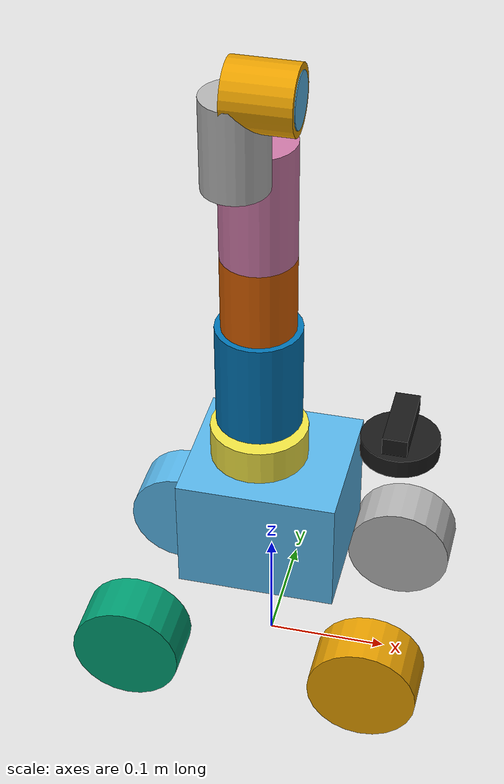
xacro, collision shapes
<?xml version="1.0"?>
<robot name="limo_mycobot" xmlns:xacro="http://ros.org/wiki/xacro">

    <xacro:arg name="mode" default="diff" />

    <xacro:if value="${'$(arg mode)' == 'ackermann'}">
        <xacro:include filename="$(find limo_car)/gazebo/ackermann_with_sensor.xacro" />
    </xacro:if>
    <xacro:unless value="${'$(arg mode)' == 'ackermann'}">
        <xacro:include filename="$(find limo_description)/urdf/limo_four_diff.xacro" />
    </xacro:unless>

    <xacro:include filename="$(find mycobot_description)/urdf/mycobot/mycobot.urdf.xacro" />

    <joint name="limo_mycobot" type="fixed">
        <parent link="base_link" />
        <child link="joint1" />
        <origin xyz="-0.01 0.0 0.0" rpy="0 0 0" />
    </joint>

</robot>

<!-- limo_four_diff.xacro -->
<robot name="limo_four_diff" xmlns:xacro="http://ros.org/wiki/xacro">

    <xacro:include filename="$(find limo_description)/urdf/limo_xacro.xacro" />

    <!-- Variables -->
    <xacro:property name="M_PI" value="3.14159"/>

    <!-- Vehicle Geometries -->
    <xacro:property name="base_x_size" value="0.13" />
    <xacro:property name="base_y_size" value="0.12" />
    <xacro:property name="base_z_size" value="0.1" />

    <xacro:property name="wheelbase" value="0.2"/>
    <xacro:property name="track" value="0.172"/>
    <xacro:property name="wheel_vertical_offset" value="-0.10" />
    <xacro:property name="base_mass" value="2.1557"/>

    <xacro:property name="wheel_length" value="0.045" />
    <xacro:property name="wheel_radius" value="0.045" />
  <link name="base_footprint"/>

  <joint name="base_joint" type="fixed">
    <parent link="base_footprint"/>
    <child link="base_link"/>
    <origin xyz="0.0 0.0 0.15" rpy="0 0 0"/>
  </joint>
    <!-- Base link -->
    <link name="base_link">
        <visual>
            <origin xyz="0 0 -0.15" rpy="0 0 1.57" />
            <geometry>
                <mesh filename="file://$(find limo_description)/meshes/limo_base.dae" scale="1 1 1"/>
            </geometry>
        </visual>
        <collision>
            <!--origin xyz="0 0 -0.15" rpy="0 0 1.57" /-->
            <origin xyz="0 0 0" rpy="0 0 0" />
          <geometry>
              <box size="${base_x_size} ${base_y_size} ${base_z_size}"/>
          </geometry>
        </collision>
    </link>

    <link name="inertial_link">
        <inertial>
            <origin xyz="0.0 0.0 0.0" />
            <mass value="${base_mass}" />
            <inertia ixx="0.24" ixy="0" ixz="0"
                     iyy="0.96" iyz="0"
                     izz="0.96" />
        </inertial>
    </link>

    <joint name="inertial_joint" type="fixed">
        <origin xyz="0 0 0" rpy="0 0 0" />
        <parent link="base_link" />
        <child link="inertial_link" />
    </joint>

    <xacro:limo_laser parent_prefix="base_link" frame_prefix="laser">
        <origin xyz="0.105 0 0.08" rpy="0 0 -0.15"/>
    </xacro:limo_laser>

    <xacro:limo_depth_camera parent_prefix="base_link" frame_prefix="camera">
        <origin xyz="0.105 0 0.1" rpy="0 0 0"/>
    </xacro:limo_depth_camera>

    <xacro:limo_imu parent_prefix="base_link" frame_prefix="imu">
        <origin xyz="0 0 0" rpy="0 0 0"/>
    </xacro:limo_imu>

    <xacro:limo_wheel parent_prefix="base_link" wheel_prefix="front_left" reflect="1">
        <origin xyz="${wheelbase/2} ${track/2} ${wheel_vertical_offset}" rpy="0 0  0" />
    </xacro:limo_wheel>

    <xacro:limo_wheel parent_prefix="base_link" wheel_prefix="front_right" reflect="-1">
        <origin xyz="${wheelbase/2} ${-track/2} ${wheel_vertical_offset}" rpy="${M_PI} 0 0" />
    </xacro:limo_wheel>

    <xacro:limo_wheel parent_prefix="base_link" wheel_prefix="rear_left" reflect="1">
        <origin xyz="${-wheelbase/2} ${track/2} ${wheel_vertical_offset}" rpy="0 0 0" />
    </xacro:limo_wheel>

    <xacro:limo_wheel parent_prefix="base_link" wheel_prefix="rear_right" reflect="-1">
        <origin xyz="${-wheelbase/2} ${-track/2} ${wheel_vertical_offset}" rpy="${M_PI} 0 0" />
    </xacro:limo_wheel>

    <gazebo reference="imu_link">
    <gravity>true</gravity>
    <sensor name="twr_imu" type="imu">
      <always_on>true</always_on>
      <update_rate>100</update_rate>
      <visualize>true</visualize>
      <imu>
        <orientation>
          <x>
            <noise type="gaussian">
              <mean>0.0</mean>
              <stddev>2e-3</stddev>
            </noise>
          </x>
          <y>
            <noise type="gaussian">
              <mean>0.0</mean>
              <stddev>2e-3</stddev>
            </noise>
          </y>
          <z>
            <noise type="gaussian">
              <mean>0.0</mean>
              <stddev>2e-3</stddev>
            </noise>
          </z>
        </orientation>
        <angular_velocity>
          <x>
            <noise type="gaussian">
              <mean>0.0</mean>
              <stddev>2e-4</stddev>
            </noise>
          </x>
          <y>
            <noise type="gaussian">
              <mean>0.0</mean>
              <stddev>2e-4</stddev>
            </noise>
          </y>
          <z>
            <noise type="gaussian">
              <mean>0.0</mean>
              <stddev>2e-4</stddev>
            </noise>
          </z>
        </angular_velocity>
        <linear_acceleration>
          <x>
            <noise type="gaussian">
              <mean>0.0</mean>
              <stddev>1.7e-2</stddev>
            </noise>
          </x>
          <y>
            <noise type="gaussian">
              <mean>0.0</mean>
              <stddev>1.7e-2</stddev>
            </noise>
          </y>
          <z>
            <noise type="gaussian">
              <mean>0.0</mean>
              <stddev>1.7e-2</stddev>
            </noise>
          </z>
        </linear_acceleration>
      </imu>
      <plugin name="two_wheeled_robot_imu" filename="libgazebo_ros_imu_sensor.so">
        <initial_orientation_as_reference>false</initial_orientation_as_reference>
        <frame_name>imu_link</frame_name>
        <ros>
          <namespace>/imu</namespace>
          <remapping>~/out:=data</remapping>
        </ros>
      </plugin>
    </sensor>
</gazebo>
<gazebo reference="laser_link">
    <sensor name="laser" type="ray">
      <always_on>true</always_on>
      <visualize>true</visualize>
      <update_rate>10</update_rate>
      <ray>
        <scan>
          <horizontal>
            <samples>120</samples>
            <resolution>1.000000</resolution>
            <min_angle>-3.14159</min_angle>
            <max_angle>3.14159</max_angle>
          </horizontal>
        </scan>
        <range>
          <min>0.3</min>
          <max>15.0</max>
          <resolution>0.015</resolution>
        </range>
        <noise>
          <type>gaussian</type>
          <mean>0.0</mean>
          <stddev>0.01</stddev>
        </noise>
      </ray>
      <plugin name="scan" filename="libgazebo_ros_ray_sensor.so">
        <ros>
          <remapping>~/out:=scan</remapping>
        </ros>
        <output_type>sensor_msgs/LaserScan</output_type>
        <frame_name>laser_link</frame_name>
      </plugin>
    </sensor>
  </gazebo>

    <gazebo reference="front_left_wheel_link">
        <mu1>0.05</mu1>
        <mu2>1.0</mu2>
        <kp>10000000.0</kp>
        <kd>1.0</kd>
        <minDepth>0.01</minDepth>
        <fdir1>0 0 1</fdir1>
        <maxContacts value="64"/>
    </gazebo>
    <gazebo reference="front_right_wheel_link">
        <mu1>0.05</mu1>
        <mu2>1.0</mu2>
        <kp>10000000.0</kp>
        <kd>1.0</kd>
        <minDepth>0.01</minDepth>
        <fdir1>0 0 1</fdir1>
        <maxContacts value="64"/>
    </gazebo>
    <gazebo reference="rear_left_wheel_link">
        <mu1>0.05</mu1>
        <mu2>1.0</mu2>
        <kp>10000000.0</kp>
        <kd>1.0</kd>
        <minDepth>0.01</minDepth>
        <fdir1>0 0 1</fdir1>
        <maxContacts value="64"/>
    </gazebo>
    <gazebo reference="rear_right_wheel_link">
        <mu1>0.05</mu1>
        <mu2>1.0</mu2>
        <kp>10000000.0</kp>
        <kd>1.0</kd>
        <minDepth>0.01</minDepth>
        <fdir1>0 0 1</fdir1>
        <maxContacts value="64"/>
    </gazebo>
    <gazebo>
        <plugin name="planar_move" filename="libgazebo_ros_planar_move.so">
            <update_rate>50</update_rate>
            <publish_rate>50</publish_rate>
            <publish_odom>true</publish_odom>
            <publish_odom_tf>true</publish_odom_tf>
            <odometry_frame>odom</odometry_frame>
            <robot_base_frame>base_footprint</robot_base_frame>
        </plugin>
        <plugin name="wheel_joint_states" filename="libgazebo_ros_joint_state_publisher.so">
            <update_rate>20</update_rate>
            <joint_name>front_left_wheel</joint_name>
            <joint_name>front_right_wheel</joint_name>
            <joint_name>rear_left_wheel</joint_name>
            <joint_name>rear_right_wheel</joint_name>
        </plugin>
    </gazebo>
</robot>

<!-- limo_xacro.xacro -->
<robot name="limo_xacro" xmlns:xacro="http://ros.org/wiki/xacro">
    <xacro:macro name="limo_wheel" params="parent_prefix wheel_prefix reflect *joint_pose">
        <link name="${wheel_prefix}_wheel_link">
            <inertial>
                <origin xyz="0 0 0" />
                <mass value="0.5" />
                <inertia ixx="0.01055" ixy="0" ixz="0" iyy="0.00075" iyz="0" izz="0.01055" />
            </inertial>
            <visual>
                <origin xyz="0 0 0" rpy="0 0 0" />
                <geometry>
                    <mesh filename="file://$(find limo_description)/meshes/limo_wheel.dae" />
                </geometry>
            </visual>
            <collision>
              <!-- eklem merkezinde (2026-09-23): eskiden yarım tekerlek dışarı kaymıştı,
                   sim gövde genişliği 0.262 m oluyordu (gerçek 0.22 m) -->
              <origin xyz="0 0 0" rpy="1.57 0 0" />
              <geometry>
                  <cylinder length="${wheel_length}" radius="${wheel_radius}" />
              </geometry>
            </collision>
        </link>

        <joint name="${wheel_prefix}_wheel" type="continuous">
            <parent link="${parent_prefix}"/>
            <child link="${wheel_prefix}_wheel_link"/>
            <xacro:insert_block name="joint_pose"/>
            <axis xyz="0 ${reflect*1} 0"/>
        </joint>
    </xacro:macro>

    <xacro:macro name="limo_laser" params="parent_prefix frame_prefix *joint_pose">
        <link name='${frame_prefix}_link'>
            <pose>0 0 0 0 0 0</pose>
            <inertial>
                <mass value="0.1"/>
                <origin xyz="0.0 0 0" rpy="0 0 0"/>
                <inertia
                    ixx="1e-6" ixy="0" ixz="0"
                    iyy="1e-6" iyz="0"
                    izz="1e-6"
                />
            </inertial>
            <visual name='laser_visual'>
                <origin xyz="0 0 0" rpy="0 0 0"/>
                <geometry>
                    <cylinder radius="0.02" length="0.01"/>
                </geometry>
                <material name='laser_material'>
                    <color rgba="0.1 0.1 0.1 1.0"/>
                    <ambient>0.1 0.1 0.1 1</ambient>
                    <diffuse>0.1 0.1 0.2 1</diffuse>
                    <specular>0 0 0 0</specular>
                    <emissive>0 0 0 1</emissive>
                </material>
            </visual>
            <collision name='laser_collision'>
                <origin xyz="0 0 0" rpy="0 0 0"/>
                <geometry>
                    <cylinder radius="0.032" length="0.016"/>
                </geometry>
            </collision>
        </link>
        <joint type="fixed" name="laser_joint">
            <xacro:insert_block name="joint_pose"/>
            <child link="${frame_prefix}_link"/>
            <parent link="${parent_prefix}"/>
        </joint>
        <gazebo reference="${frame_prefix}_link">
            <material>Gazebo/Yellow</material>
        </gazebo>
    </xacro:macro>

    <xacro:macro name="limo_depth_camera" params="parent_prefix frame_prefix *joint_pose">
        <link name='${frame_prefix}_link'>
            <pose>0 0 0 0 0 0</pose>
            <inertial>
                <mass value="0.1"/>
                <origin xyz="0.0 0 0" rpy="0 0 0"/>
                <inertia
                    ixx="1e-6" ixy="0" ixz="0"
                    iyy="1e-6" iyz="0"
                    izz="1e-6"
                />
            </inertial>
            <visual name='depth_camera_visual'>
                <origin xyz="0 0 0" rpy="0 0 0"/>
                <geometry>
                    <box size="0.02 0.06 0.015"/>
                </geometry>
                <material name='depth_camera_material'>
                    <color rgba="0.1 0.1 0.1 1.0"/>
                    <ambient>0.1 0.1 0.1 1</ambient>
                    <diffuse>0.1 0.1 0.2 1</diffuse>
                    <specular>0 0 0 0</specular>
                    <emissive>0 0 0 1</emissive>
                </material>
            </visual>
            <collision name='depth_camera_collision'>
                <origin xyz="0 0 0" rpy="0 0 0"/>
                <geometry>
                    <box size="0.02 0.06 0.015"/>
                </geometry>
            </collision>

        </link>

        <joint type="fixed" name="depth_camera_joint">
            <xacro:insert_block name="joint_pose"/>
            <child link="${frame_prefix}_link"/>
            <parent link="${parent_prefix}"/>
        </joint>
        <link name="depth_link"></link>

        <joint name="${frame_prefix}_to_camera_joint" type="fixed">
            <origin xyz="0 0 0" rpy="${-M_PI/2} 0 ${-M_PI/2} "/>
            <parent link="${frame_prefix}_link"/>
            <child link="depth_link"/>
          </joint>

        <gazebo reference="${frame_prefix}_link">
            <material>Gazebo/Yellow</material>
        </gazebo>
    </xacro:macro>

    <xacro:macro name="limo_imu" params="parent_prefix frame_prefix  *joint_pose">
        <link name='${frame_prefix}_link'>
            <pose>0 0 0 0 0 0</pose>
            <inertial>
                <mass value="0.01"/>
                <origin xyz="0.0 0 0" rpy="0 0 0"/>
                <inertia
                    ixx="1e-7" ixy="0" ixz="0"
                    iyy="1e-7" iyz="0"
                    izz="1e-7"
                />
            </inertial>
            <visual name='imu_visual'>
                <origin xyz="0 0 0" rpy="0 0 0"/>
                <geometry>
                    <box size="0.001 0.001 0.001"/>
                </geometry>
                <material name='imu_material'>
                    <color rgba="0.1 0.1 0.1 1.0"/>
                    <ambient>0.1 0.1 0.1 1</ambient>
                    <diffuse>0.1 0.1 0.2 1</diffuse>
                    <specular>0 0 0 0</specular>
                    <emissive>0 0 0 1</emissive>
                </material>
            </visual>
            <collision name='imu_collision'>
                <origin xyz="0 0 0" rpy="0 0 0"/>
                <geometry>
                    <box size="0.001 0.001 0.001"/>
                </geometry>
            </collision>
        </link>
        <joint type="fixed" name="imu_joint">
            <xacro:insert_block name="joint_pose"/>
            <child link="${frame_prefix}_link"/>
            <parent link="${parent_prefix}"/>
        </joint>
        <gazebo reference="${frame_prefix}_link">
            <material>Gazebo/Yellow</material>
        </gazebo>
    </xacro:macro>
</robot>

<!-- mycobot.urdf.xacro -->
<robot xmlns:xacro="http://www.ros.org/wiki/xacro" name="mycobot_280">

  <!-- Link 1 (Base of the arm) -->
  <link name="joint1">
    <visual>
      <geometry>
        <mesh filename="package://mycobot_description/urdf/mycobot/joint1.dae"/>
      </geometry>
      <origin xyz="0.0 0 0" rpy="0 0 -1.5708"/>
    </visual>
    <collision>
      <geometry>
        <cylinder radius="0.04" length="0.08"/>
      </geometry>
      <origin xyz="0.0 0 0.04" rpy="0 0 0"/>
    </collision>
    <inertial>
      <origin xyz="0 0 0.04" rpy="0 0 0"/>
      <mass value="0.15"/>
      <inertia ixx="1.5e-4" ixy="0.0" ixz="0.0" iyy="1.5e-4" iyz="0.0" izz="1.5e-4"/>
    </inertial>
  </link>

  <!-- Joint 1 to 2 (-168 to +168 deg) -->
  <joint name="joint2_to_joint1" type="revolute">
    <axis xyz="0 0 1"/>
    <limit effort="10.0" lower="-2.9322" upper="2.9322" velocity="1.5"/>
    <dynamics damping="0.5" friction="1.0"/>
    <parent link="joint1"/>
    <child link="joint2"/>
    <origin xyz="0 0 0.13156" rpy="0 0 0"/>
  </joint>

  <!-- Link 2 -->
  <link name="joint2">
    <visual>
      <geometry>
        <mesh filename="package://mycobot_description/urdf/mycobot/joint2.dae"/>
      </geometry>
      <origin xyz="0.0 0 -0.06096" rpy="0 0 -1.5708"/>
    </visual>
    <collision>
      <geometry>
        <cylinder radius="0.035" length="0.09"/>
      </geometry>
      <origin xyz="0.0 0 0" rpy="0 0 0"/>
    </collision>
    <inertial>
      <origin xyz="0 0 0" rpy="0 0 0"/>
      <mass value="0.13"/>
      <inertia ixx="1.3e-4" ixy="0.0" ixz="0.0" iyy="1.3e-4" iyz="0.0" izz="1.3e-4"/>
    </inertial>
  </link>

  <!-- Joint 2 to 3 (-135 to +135 deg) -->
  <joint name="joint3_to_joint2" type="revolute">
    <axis xyz="0 0 1"/>
    <limit effort="10.0" lower="-2.3562" upper="2.3562" velocity="1.5"/>
    <dynamics damping="0.5" friction="1.0"/>
    <parent link="joint2"/>
    <child link="joint3"/>
    <origin xyz="0 0 0" rpy="0 1.5708 -1.5708"/>
  </joint>

  <!-- Link 3 -->
  <link name="joint3">
    <visual>
      <geometry>
        <mesh filename="package://mycobot_description/urdf/mycobot/joint3.dae"/>
      </geometry>
      <origin xyz="0.0 0 0.03256" rpy="0 -1.5708 0"/>
    </visual>
    <collision>
      <geometry>
        <cylinder radius="0.03" length="0.11"/>
      </geometry>
      <origin xyz="-0.055 0 0" rpy="0 1.5708 0"/>
    </collision>
    <inertial>
      <origin xyz="-0.055 0 0" rpy="0 0 0"/>
      <mass value="0.12"/>
      <inertia ixx="1.2e-4" ixy="0.0" ixz="0.0" iyy="1.2e-4" iyz="0.0" izz="1.2e-4"/>
    </inertial>
  </link>

  <!-- Joint 3 to 4 (-150 to +150 deg) -->
  <joint name="joint4_to_joint3" type="revolute">
    <axis xyz="0 0 1"/>
    <limit effort="10.0" lower="-2.6180" upper="2.6180" velocity="1.5"/>
    <dynamics damping="0.5" friction="1.0"/>
    <parent link="joint3"/>
    <child link="joint4"/>
    <origin xyz="-0.1104 0 0" rpy="0 0 0"/>
  </joint>

  <!-- Link 4 -->
  <link name="joint4">
    <visual>
      <geometry>
        <mesh filename="package://mycobot_description/urdf/mycobot/joint4.dae"/>
      </geometry>
      <origin xyz="0.0 0 0.03056" rpy="0 -1.5708 0"/>
    </visual>
    <collision>
      <geometry>
        <cylinder radius="0.03" length="0.10"/>
      </geometry>
      <origin xyz="-0.048 0 0" rpy="0 1.5708 0"/>
    </collision>
    <inertial>
      <origin xyz="-0.048 0 0" rpy="0 0 0"/>
      <mass value="0.10"/>
      <inertia ixx="1.0e-4" ixy="0.0" ixz="0.0" iyy="1.0e-4" iyz="0.0" izz="1.0e-4"/>
    </inertial>
  </link>

  <!-- Joint 4 to 5 (-145 to +145 deg) -->
  <joint name="joint5_to_joint4" type="revolute">
    <axis xyz="0 0 1"/>
    <limit effort="10.0" lower="-2.5307" upper="2.5307" velocity="1.5"/>
    <dynamics damping="0.5" friction="1.0"/>
    <parent link="joint4"/>
    <child link="joint5"/>
    <origin xyz="-0.096 0 0.06462" rpy="0 0 -1.5708"/>
  </joint>

  <!-- Link 5 -->
  <link name="joint5">
    <visual>
      <geometry>
        <mesh filename="package://mycobot_description/urdf/mycobot/joint5.dae"/>
      </geometry>
      <origin xyz="0.0 0 -0.03356" rpy="-1.5708 0 0"/>
    </visual>
    <collision>
      <geometry>
        <cylinder radius="0.025" length="0.07"/>
      </geometry>
      <origin xyz="0 -0.036 0" rpy="1.5708 0 0"/>
    </collision>
    <inertial>
      <origin xyz="0 -0.036 0" rpy="0 0 0"/>
      <mass value="0.08"/>
      <inertia ixx="1.0e-4" ixy="0.0" ixz="0.0" iyy="1.0e-4" iyz="0.0" izz="1.0e-4"/>
    </inertial>
  </link>

  <!-- Joint 5 to 6 (-165 to +165 deg) -->
  <joint name="joint6_to_joint5" type="revolute">
    <axis xyz="0 0 1"/>
    <limit effort="10.0" lower="-2.8798" upper="2.8798" velocity="1.5"/>
    <dynamics damping="0.5" friction="1.0"/>
    <parent link="joint5"/>
    <child link="joint6"/>
    <origin xyz="0 -0.07318 0" rpy="1.5708 -1.5708 0"/>
  </joint>

  <!-- Link 6 -->
  <link name="joint6">
    <visual>
      <geometry>
        <mesh filename="package://mycobot_description/urdf/mycobot/joint6.dae"/>
      </geometry>
      <origin xyz="0 0.00 -0.038" rpy="0 0 0"/>
    </visual>
    <collision>
      <geometry>
        <cylinder radius="0.025" length="0.05"/>
      </geometry>
      <origin xyz="0 0.02 0" rpy="1.5708 0 0"/>
    </collision>
    <inertial>
      <origin xyz="0 0.02 0" rpy="0 0 0"/>
      <mass value="0.06"/>
      <inertia ixx="1.0e-4" ixy="0.0" ixz="0.0" iyy="1.0e-4" iyz="0.0" izz="1.0e-4"/>
    </inertial>
  </link>

  <!-- Joint 6 to 6_flange (-175 to +175 deg) -->
  <joint name="joint6output_to_joint6" type="revolute">
    <axis xyz="0 0 1"/>
    <limit effort="10.0" lower="-3.0543" upper="3.0543" velocity="1.5"/>
    <dynamics damping="0.5" friction="1.0"/>
    <parent link="joint6"/>
    <child link="joint6_flange"/>
    <origin xyz="0 0.0456 0" rpy="-1.5708 0 0"/>
  </joint>

  <!-- Link 6 Flange -->
  <link name="joint6_flange">
    <visual>
      <geometry>
        <mesh filename="package://mycobot_description/urdf/mycobot/joint7.dae"/>
      </geometry>
      <origin xyz="0.0 0 -0.012" rpy="0 0 0"/>
    </visual>
    <collision>
      <geometry>
        <cylinder radius="0.02" length="0.015"/>
      </geometry>
      <origin xyz="0.0 0 -0.0075" rpy="0 0 0"/>
    </collision>
    <inertial>
      <origin xyz="0 0 -0.0075" rpy="0 0 0"/>
      <mass value="0.02"/>
      <inertia ixx="1.0e-4" ixy="0.0" ixz="0.0" iyy="1.0e-4" iyz="0.0" izz="1.0e-4"/>
    </inertial>
  </link>

</robot>
